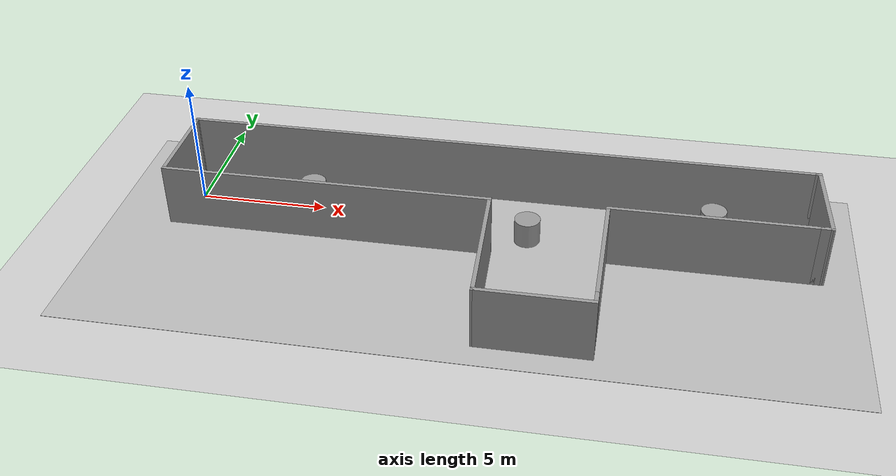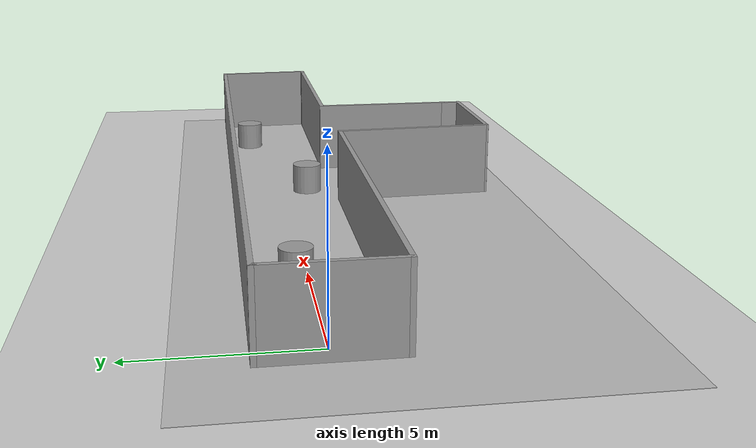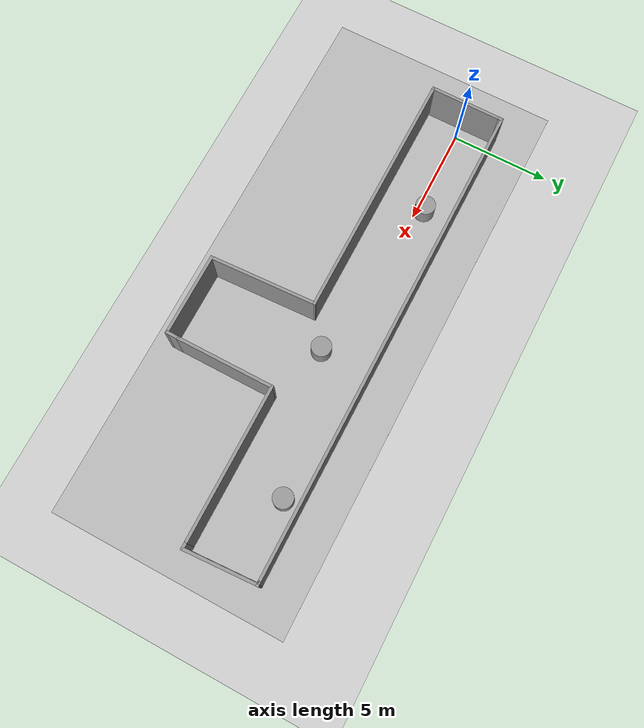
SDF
<sdf version="1.7">
 <world name="default">
  <light name="sun" type="directional">
   <pose>0 0 10 0 -0 0</pose>
   <diffuse>0.8 0.8 0.8 1</diffuse>
   <specular>0.1 0.1 0.1 1</specular>
   <attenuation>
    <range>1000</range>
    <constant>0.9</constant>
    <linear>0.01</linear>
    <quadratic>0.001</quadratic>
   </attenuation>
   <direction>-0.5 0.5 -1</direction>
   <spot><inner_angle>0</inner_angle><outer_angle>0</outer_angle><falloff>0</falloff></spot>
  </light>
  <model name="ground_plane">
   <static>1</static>
   <link name="link">
    <collision name="collision">
     <geometry><plane><normal>0 0 1</normal><size>100 100</size></plane></geometry>
     <surface><friction><ode><mu>100</mu><mu2>50</mu2></ode></friction></surface>
    </collision>
    <visual name="visual">
     <cast_shadows>0</cast_shadows>
     <geometry><plane><normal>0 0 1</normal><size>100 100</size></plane></geometry>
     <material>
      <script><uri>file://media/materials/scripts/gazebo.material</uri><name>Gazebo/Grey</name></script>
     </material>
    </visual>
   </link>
  </model>
  <gravity>0 0 -9.8</gravity>
  <magnetic_field>6e-06 2.3e-05 -4.2e-05</magnetic_field>
  <atmosphere type="adiabatic"/>
  <physics name="default_physics" default="0" type="ode">
   <max_step_size>0.001</max_step_size>
   <real_time_factor>1</real_time_factor>
   <real_time_update_rate>1000</real_time_update_rate>
  </physics>
  <scene><ambient>0.4 0.4 0.4 1</ambient><background>0.7 0.7 0.7 1</background><shadows>1</shadows></scene>
  <spherical_coordinates>
   <surface_model>EARTH_WGS84</surface_model>
   <latitude_deg>0</latitude_deg>
   <longitude_deg>0</longitude_deg>
   <elevation>0</elevation>
   <heading_deg>0</heading_deg>
  </spherical_coordinates>
  <audio><device>default</device></audio>
  <model name="my_ground_plane_0">
   <static>1</static>
   <link name="link">
    <collision name="collision">
     <geometry><plane><normal>0 0 1</normal><size>28.8 12</size></plane></geometry>
     <surface><friction><ode><mu>100</mu><mu2>50</mu2></ode></friction></surface>
    </collision>
    <visual name="visual">
     <cast_shadows>0</cast_shadows>
     <geometry><plane><normal>0 0 1</normal><size>28.8 12</size></plane></geometry>
     <material>
      <script>
       <uri>model://my_ground_plane/materials/scripts</uri>
       <uri>model://my_ground_plane/materials/textures/</uri>
       <name>MyGroundPlane/Image</name>
      </script>
     </material>
    </visual>
   </link>
   <pose>11.2785 -2.18868 0 0 -0 0</pose>
  </model>
  <model name="Testbed_walls">
   <pose>11.812 -2.67968 0 0 -0 0</pose>
   <link name="Wall_10">
    <collision name="Wall_10_Collision">
     <geometry><box><size>12.75 0.15 2.5</size></box></geometry>
     <pose>0 0 1.25 0 -0 0</pose>
    </collision>
    <visual name="Wall_10_Visual">
     <pose>0 0 1.25 0 -0 0</pose>
     <geometry><box><size>12.75 0.15 2.5</size></box></geometry>
     <material>
      <script><uri>file://media/materials/scripts/gazebo.material</uri><name>Gazebo/Grey</name></script>
      <ambient>1 1 1 1</ambient>
     </material>
     <meta><layer>0</layer></meta>
    </visual>
    <pose>-6.15205 0.799676 0 0 -0 0</pose>
   </link>
   <link name="Wall_14">
    <collision name="Wall_14_Collision">
     <geometry><box><size>5 0.15 2.5</size></box></geometry>
     <pose>0 0 1.25 0 -0 0</pose>
    </collision>
    <visual name="Wall_14_Visual">
     <pose>0 0 1.25 0 -0 0</pose>
     <geometry><box><size>5 0.15 2.5</size></box></geometry>
     <material>
      <script><uri>file://media/materials/scripts/gazebo.material</uri><name>Gazebo/Grey</name></script>
      <ambient>1 1 1 1</ambient>
     </material>
     <meta><layer>0</layer></meta>
    </visual>
    <pose>4.49795 -1.47532 0 0 -0 1.5708</pose>
   </link>
   <link name="Wall_15">
    <collision name="Wall_15_Collision">
     <geometry><box><size>7.75 0.15 2.5</size></box></geometry>
     <pose>0 0 1.25 0 -0 0</pose>
    </collision>
    <visual name="Wall_15_Visual">
     <pose>0 0 1.25 0 -0 0</pose>
     <geometry><box><size>7.75 0.15 2.5</size></box></geometry>
     <material>
      <script><uri>file://media/materials/scripts/gazebo.material</uri><name>Gazebo/Grey</name></script>
      <ambient>1 1 1 1</ambient>
     </material>
     <meta><layer>0</layer></meta>
    </visual>
    <pose>8.29795 0.949676 0 0 -0 0</pose>
   </link>
   <link name="Wall_18">
    <collision name="Wall_18_Collision">
     <geometry><box><size>0.75 0.15 2.5</size></box></geometry>
     <pose>0 0 1.25 0 -0 0</pose>
    </collision>
    <visual name="Wall_18_Visual">
     <pose>0 0 1.25 0 -0 0</pose>
     <geometry><box><size>0.75 0.15 2.5</size></box></geometry>
     <material>
      <script><uri>file://media/materials/scripts/gazebo.material</uri><name>Gazebo/Grey</name></script>
      <ambient>1 1 1 1</ambient>
     </material>
     <meta><layer>0</layer></meta>
    </visual>
    <pose>4.49795 -4.20032 0 0 -0 -1.5708</pose>
   </link>
   <link name="Wall_19">
    <collision name="Wall_19_Collision">
     <geometry><box><size>4.25 0.15 2.5</size></box></geometry>
     <pose>0 0 1.25 0 -0 0</pose>
    </collision>
    <visual name="Wall_19_Visual">
     <pose>0 0 1.25 0 -0 0</pose>
     <geometry><box><size>4.25 0.15 2.5</size></box></geometry>
     <material>
      <script><uri>file://media/materials/scripts/gazebo.material</uri><name>Gazebo/Grey</name></script>
      <ambient>1 1 1 1</ambient>
     </material>
     <meta><layer>0</layer></meta>
    </visual>
    <pose>2.44795 -4.50032 0 0 -0 3.14159</pose>
   </link>
   <link name="Wall_20">
    <collision name="Wall_20_Collision">
     <geometry><box><size>5.45589 0.15 2.5</size></box></geometry>
     <pose>0 0 1.25 0 -0 0</pose>
    </collision>
    <visual name="Wall_20_Visual">
     <pose>0 0 1.25 0 -0 0</pose>
     <geometry><box><size>5.45589 0.15 2.5</size></box></geometry>
     <material>
      <script><uri>file://media/materials/scripts/gazebo.material</uri><name>Gazebo/Grey</name></script>
      <ambient>1 1 1 1</ambient>
     </material>
     <meta><layer>0</layer></meta>
    </visual>
    <pose>0.27295 -1.85032 0 0 -0 1.61793</pose>
   </link>
   <link name="Wall_22">
    <collision name="Wall_22_Collision">
     <geometry><box><size>0.25 0.15 2.5</size></box></geometry>
     <pose>0 0 1.25 0 -0 0</pose>
    </collision>
    <visual name="Wall_22_Visual">
     <pose>0 0 1.25 0 -0 0</pose>
     <geometry><box><size>0.25 0.15 2.5</size></box></geometry>
     <material>
      <script><uri>file://media/materials/scripts/gazebo.material</uri><name>Gazebo/Grey</name></script>
      <ambient>1 1 1 1</ambient>
     </material>
     <meta><layer>0</layer></meta>
    </visual>
    <pose>12.198 4.49968 0 0 -0 0</pose>
   </link>
   <link name="Wall_24">
    <collision name="Wall_24_Collision">
     <geometry><box><size>0.5 0.15 2.5</size></box></geometry>
     <pose>0 0 1.25 0 -0 0</pose>
    </collision>
    <visual name="Wall_24_Visual">
     <pose>0 0 1.25 0 -0 0</pose>
     <geometry><box><size>0.5 0.15 2.5</size></box></geometry>
     <material>
      <script><uri>file://media/materials/scripts/gazebo.material</uri><name>Gazebo/Grey</name></script>
      <ambient>1 1 1 1</ambient>
     </material>
     <meta><layer>0</layer></meta>
    </visual>
    <pose>12.2729 0.949676 0 0 -0 0</pose>
   </link>
   <link name="Wall_25">
    <collision name="Wall_25_Collision">
     <geometry><box><size>3.70563 0.15 2.5</size></box></geometry>
     <pose>0 0 1.25 0 -0 0</pose>
    </collision>
    <visual name="Wall_25_Visual">
     <pose>0 0 1.25 0 -0 0</pose>
     <geometry><box><size>3.70563 0.15 2.5</size></box></geometry>
     <material>
      <script><uri>file://media/materials/scripts/gazebo.material</uri><name>Gazebo/Grey</name></script>
      <ambient>1 1 1 1</ambient>
     </material>
     <meta><layer>0</layer></meta>
    </visual>
    <pose>12.348 2.72468 0 0 -0 1.62708</pose>
   </link>
   <link name="Wall_4">
    <collision name="Wall_4_Collision">
     <geometry><box><size>3.75 0.15 2.5</size></box></geometry>
     <pose>0 0 1.25 0 -0 0</pose>
    </collision>
    <visual name="Wall_4_Visual">
     <pose>0 0 1.25 0 -0 0</pose>
     <geometry><box><size>3.75 0.15 2.5</size></box></geometry>
     <material>
      <script><uri>file://media/materials/scripts/gazebo.material</uri><name>Gazebo/Grey</name></script>
      <ambient>1 1 1 1</ambient>
     </material>
     <meta><layer>0</layer></meta>
    </visual>
    <pose>-12.452 2.59968 0 0 -0 1.5708</pose>
   </link>
   <link name="Wall_5">
    <collision name="Wall_5_Collision">
     <geometry><box><size>0.25 0.15 2.5</size></box></geometry>
     <pose>0 0 1.25 0 -0 0</pose>
    </collision>
    <visual name="Wall_5_Visual">
     <pose>0 0 1.25 0 -0 0</pose>
     <geometry><box><size>0.25 0.15 2.5</size></box></geometry>
     <material>
      <script><uri>file://media/materials/scripts/gazebo.material</uri><name>Gazebo/Grey</name></script>
      <ambient>1 1 1 1</ambient>
     </material>
     <meta><layer>0</layer></meta>
    </visual>
    <pose>-12.452 4.44968 0 0 -0 1.5708</pose>
   </link>
   <link name="Wall_6">
    <collision name="Wall_6_Collision">
     <geometry><box><size>24.75 0.15 2.5</size></box></geometry>
     <pose>0 0 1.25 0 -0 0</pose>
    </collision>
    <visual name="Wall_6_Visual">
     <pose>0 0 1.25 0 -0 0</pose>
     <geometry><box><size>24.75 0.15 2.5</size></box></geometry>
     <material>
      <script><uri>file://media/materials/scripts/gazebo.material</uri><name>Gazebo/Grey</name></script>
      <ambient>1 1 1 1</ambient>
     </material>
     <meta><layer>0</layer></meta>
    </visual>
    <pose>-0.15205 4.49968 0 0 -0 0</pose>
   </link>
   <static>1</static>
  </model>
  <model name="unit_cylinder">
   <pose>4.51668 0.364001 0.5 0 -0 0</pose>
   <link name="link">
    <inertial>
     <mass>1</mass>
     <inertia><ixx>0.145833</ixx><ixy>0</ixy><ixz>0</ixz><iyy>0.145833</iyy><iyz>0</iyz><izz>0.125</izz></inertia>
    </inertial>
    <collision name="collision">
     <geometry><cylinder><radius>0.5</radius><length>1</length></cylinder></geometry>
    </collision>
    <visual name="visual">
     <geometry><cylinder><radius>0.5</radius><length>1</length></cylinder></geometry>
     <material>
      <script><name>Gazebo/Grey</name><uri>file://media/materials/scripts/gazebo.material</uri></script>
     </material>
    </visual>
   </link>
  </model>
  <model name="unit_cylinder_0">
   <pose>13.2724 -0.826766 0.5 0 -0 0</pose>
   <link name="link">
    <inertial>
     <mass>1</mass>
     <inertia><ixx>0.145833</ixx><ixy>0</ixy><ixz>0</ixz><iyy>0.145833</iyy><iyz>0</iyz><izz>0.125</izz></inertia>
    </inertial>
    <collision name="collision">
     <geometry><cylinder><radius>0.5</radius><length>1</length></cylinder></geometry>
    </collision>
    <visual name="visual">
     <geometry><cylinder><radius>0.5</radius><length>1</length></cylinder></geometry>
     <material>
      <script><name>Gazebo/Grey</name><uri>file://media/materials/scripts/gazebo.material</uri></script>
     </material>
    </visual>
   </link>
  </model>
  <model name="unit_cylinder_1">
   <pose>20.2769 0.92414 0.5 0 -0 0</pose>
   <link name="link">
    <inertial>
     <mass>1</mass>
     <inertia><ixx>0.145833</ixx><ixy>0</ixy><ixz>0</ixz><iyy>0.145833</iyy><iyz>0</iyz><izz>0.125</izz></inertia>
    </inertial>
    <collision name="collision">
     <geometry><cylinder><radius>0.5</radius><length>1</length></cylinder></geometry>
    </collision>
    <visual name="visual">
     <geometry><cylinder><radius>0.5</radius><length>1</length></cylinder></geometry>
     <material>
      <script><name>Gazebo/Grey</name><uri>file://media/materials/scripts/gazebo.material</uri></script>
     </material>
    </visual>
   </link>
  </model>
  <light name="user_directional_light_0" type="directional">
   <pose>11.0345 -13.0266 1 0 -0 0</pose>
   <diffuse>0.5 0.5 0.5 1</diffuse>
   <specular>0.1 0.1 0.1 1</specular>
   <direction>0.1 0.1 -0.9</direction>
   <attenuation>
    <range>20</range>
    <constant>0.5</constant>
    <linear>0.01</linear>
    <quadratic>0.001</quadratic>
   </attenuation>
  </light>
  <light name="user_directional_light_1" type="directional">
   <pose>11.0023 9.1288 1 0 -0 0</pose>
   <diffuse>0.5 0.5 0.5 1</diffuse>
   <specular>0.1 0.1 0.1 1</specular>
   <direction>0.1 0.1 -0.9</direction>
   <attenuation>
    <range>20</range>
    <constant>0.5</constant>
    <linear>0.01</linear>
    <quadratic>0.001</quadratic>
   </attenuation>
  </light>
 </world>
</sdf>
